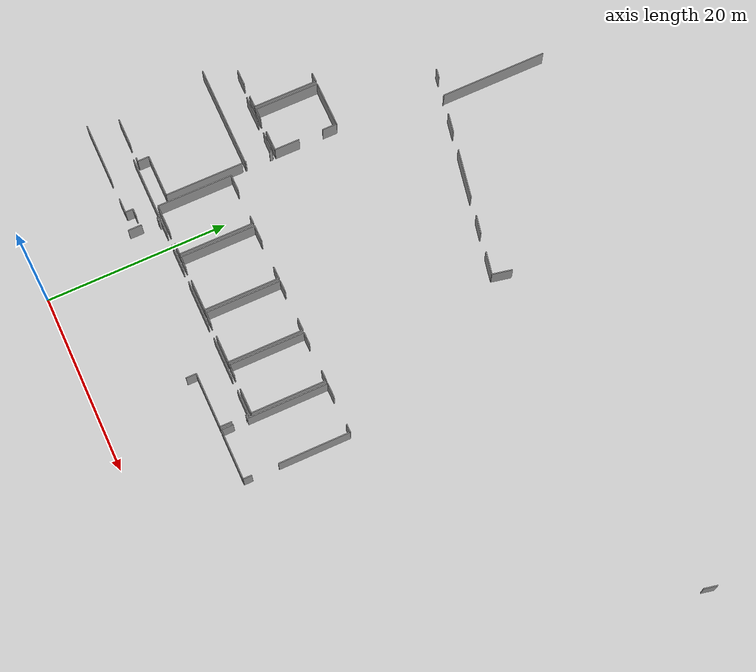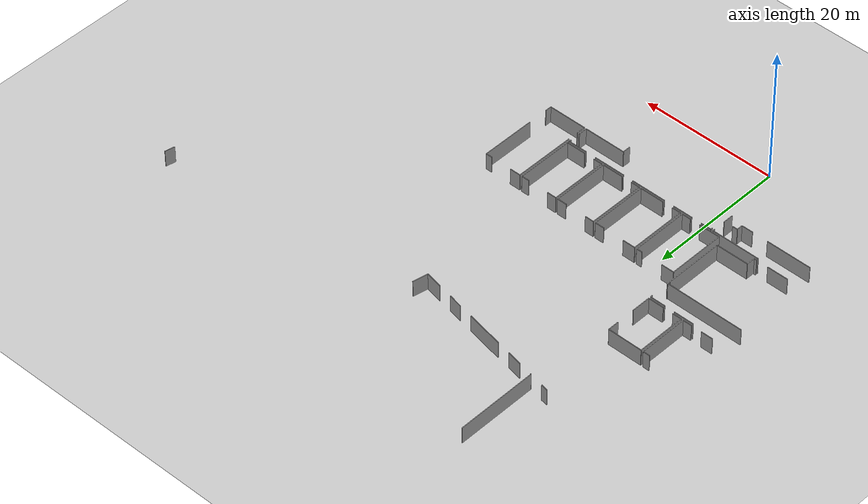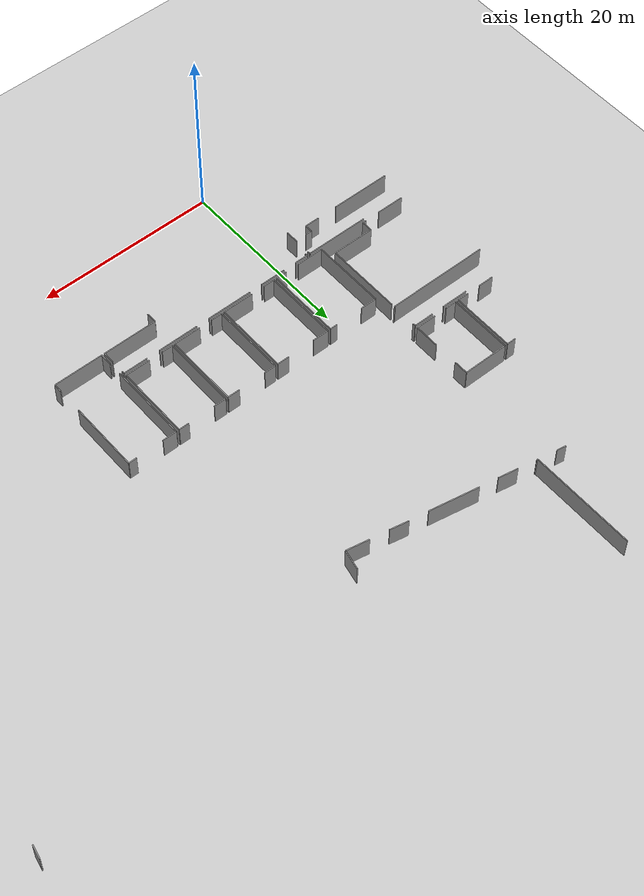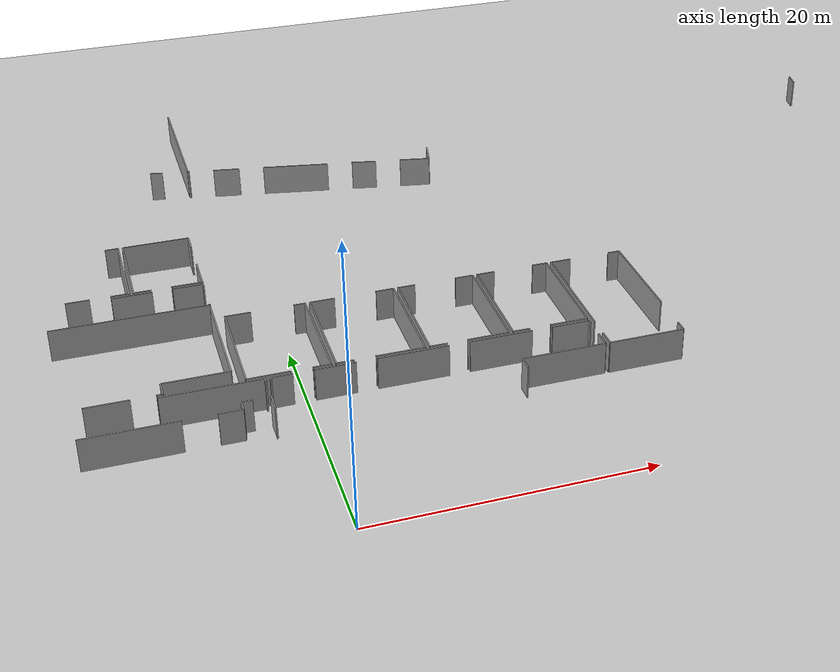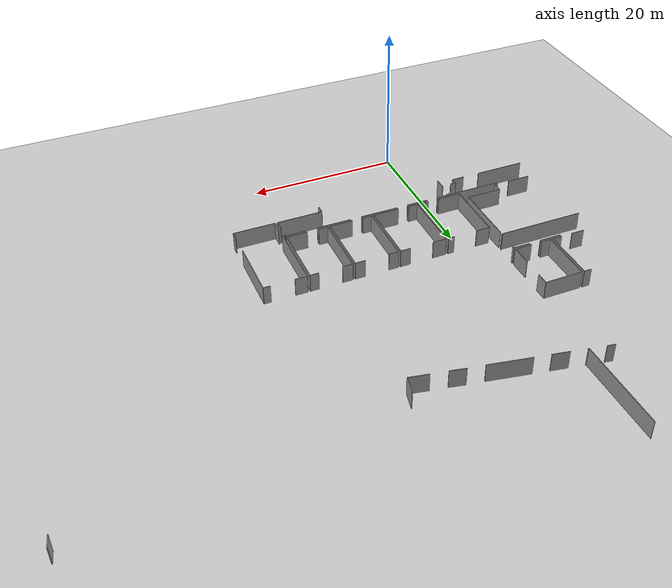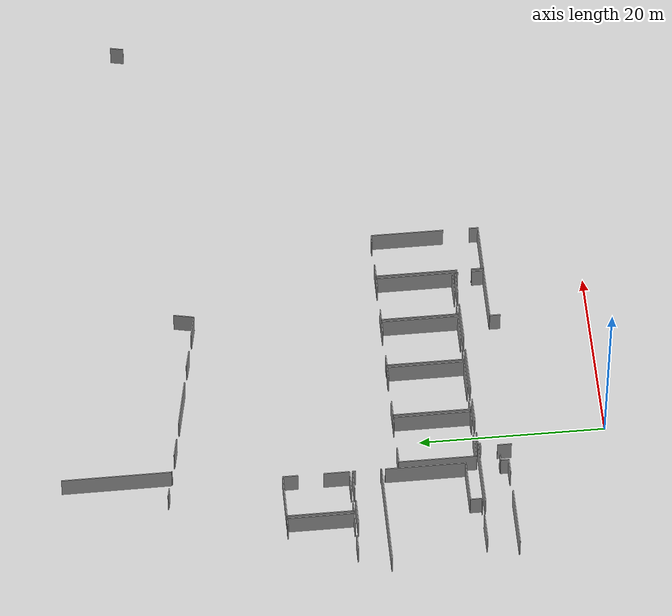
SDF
<sdf version="1.6">
 <world name="default">
  <model name="ground_plane">
   <static>1</static>
   <link name="link">
    <collision name="collision">
     <geometry><plane><normal>0 0 1</normal><size>100 100</size></plane></geometry>
     <surface><friction><ode><mu>100</mu><mu2>50</mu2></ode></friction></surface>
    </collision>
    <visual name="visual">
     <cast_shadows>0</cast_shadows>
     <geometry><plane><normal>0 0 1</normal><size>100 100</size></plane></geometry>
     <material>
      <script><uri>file://media/materials/scripts/gazebo.material</uri><name>Gazebo/Grey</name></script>
     </material>
    </visual>
   </link>
  </model>
  <model name="0510045926_A-40">
   <static>1</static>
   <link name="Wall_524">
    <collision name="Wall_524_Collision">
     <geometry><box><size>1.4505211362 0.1 2.5</size></box></geometry>
     <pose>0.7252605681 0 1.25 0 0 0</pose>
    </collision>
    <visual name="Wall_524_Visual">
     <pose>0.7252605681 0 1.25 0 0 0</pose>
     <geometry><box><size>1.4505211362 0.1 2.5</size></box></geometry>
     <material>
      <script><uri>file://media/materials/scripts/gazebo.material</uri><name>Gazebo/Grey</name></script>
      <ambient>1 1 1 1</ambient>
     </material>
    </visual>
    <pose>189.402689376 -53.2436113032 0 0 0 1.37209662876</pose>
   </link>
   <link name="Wall_536">
    <collision name="Wall_536_Collision">
     <geometry><box><size>11.7244645453 0.1 2.5</size></box></geometry>
     <pose>5.86223227267 0 1.25 0 0 0</pose>
    </collision>
    <visual name="Wall_536_Visual">
     <pose>5.86223227267 0 1.25 0 0 0</pose>
     <geometry><box><size>11.7244645453 0.1 2.5</size></box></geometry>
     <material>
      <script><uri>file://media/materials/scripts/gazebo.material</uri><name>Gazebo/Grey</name></script>
      <ambient>1 1 1 1</ambient>
     </material>
    </visual>
    <pose>130.882163685 -54.281794356 0 0 0 1.57499643633</pose>
   </link>
   <link name="Wall_545">
    <collision name="Wall_545_Collision">
     <geometry><box><size>2.21784998049 0.1 2.5</size></box></geometry>
     <pose>1.10892499024 0 1.25 0 0 0</pose>
    </collision>
    <visual name="Wall_545_Visual">
     <pose>1.10892499024 0 1.25 0 0 0</pose>
     <geometry><box><size>2.21784998049 0.1 2.5</size></box></geometry>
     <material>
      <script><uri>file://media/materials/scripts/gazebo.material</uri><name>Gazebo/Grey</name></script>
      <ambient>1 1 1 1</ambient>
     </material>
    </visual>
    <pose>151.599880698 -56.0657431322 0 0 0 -1.77034666873</pose>
   </link>
   <link name="Wall_546">
    <collision name="Wall_546_Collision">
     <geometry><box><size>2.51424567733 0.1 2.5</size></box></geometry>
     <pose>1.25712283866 0 1.25 0 0 0</pose>
    </collision>
    <visual name="Wall_546_Visual">
     <pose>1.25712283866 0 1.25 0 0 0</pose>
     <geometry><box><size>2.51424567733 0.1 2.5</size></box></geometry>
     <material>
      <script><uri>file://media/materials/scripts/gazebo.material</uri><name>Gazebo/Grey</name></script>
      <ambient>1 1 1 1</ambient>
     </material>
    </visual>
    <pose>151.160239366 -58.2395816808 0 0 0 2.94229633176</pose>
   </link>
   <link name="Wall_547">
    <collision name="Wall_547_Collision">
     <geometry><box><size>2.05072092037 0.1 2.5</size></box></geometry>
     <pose>1.02536046018 0 1.25 0 0 0</pose>
    </collision>
    <visual name="Wall_547_Visual">
     <pose>1.02536046018 0 1.25 0 0 0</pose>
     <geometry><box><size>2.05072092037 0.1 2.5</size></box></geometry>
     <material>
      <script><uri>file://media/materials/scripts/gazebo.material</uri><name>Gazebo/Grey</name></script>
      <ambient>1 1 1 1</ambient>
     </material>
    </visual>
    <pose>146.627770762 -57.3564914997 0 0 0 2.93249632652</pose>
   </link>
   <link name="Wall_548">
    <collision name="Wall_548_Collision">
     <geometry><box><size>5.48751039883 0.1 2.5</size></box></geometry>
     <pose>2.74375519942 0 1.25 0 0 0</pose>
    </collision>
    <visual name="Wall_548_Visual">
     <pose>2.74375519942 0 1.25 0 0 0</pose>
     <geometry><box><size>5.48751039883 0.1 2.5</size></box></geometry>
     <material>
      <script><uri>file://media/materials/scripts/gazebo.material</uri><name>Gazebo/Grey</name></script>
      <ambient>1 1 1 1</ambient>
     </material>
    </visual>
    <pose>142.546873711 -56.5718890997 0 0 0 2.94833379995</pose>
   </link>
   <link name="Wall_549">
    <collision name="Wall_549_Collision">
     <geometry><box><size>2.16450110324 0.1 2.5</size></box></geometry>
     <pose>1.08225055162 0 1.25 0 0 0</pose>
    </collision>
    <visual name="Wall_549_Visual">
     <pose>1.08225055162 0 1.25 0 0 0</pose>
     <geometry><box><size>2.16450110324 0.1 2.5</size></box></geometry>
     <material>
      <script><uri>file://media/materials/scripts/gazebo.material</uri><name>Gazebo/Grey</name></script>
      <ambient>1 1 1 1</ambient>
     </material>
    </visual>
    <pose>135.13693736 -55.1445777781 0 0 0 2.94865888566</pose>
   </link>
   <link name="Wall_550">
    <collision name="Wall_550_Collision">
     <geometry><box><size>0.124872636995 0.1 2.5</size></box></geometry>
     <pose>0.0624363184976 0 1.25 0 0 0</pose>
    </collision>
    <visual name="Wall_550_Visual">
     <pose>0.0624363184976 0 1.25 0 0 0</pose>
     <geometry><box><size>0.124872636995 0.1 2.5</size></box></geometry>
     <material>
      <script><uri>file://media/materials/scripts/gazebo.material</uri><name>Gazebo/Grey</name></script>
      <ambient>1 1 1 1</ambient>
     </material>
    </visual>
    <pose>130.988012666 -54.3480451572 0 0 0 2.58234692593</pose>
   </link>
   <link name="Wall_988">
    <collision name="Wall_988_Collision">
     <geometry><box><size>1.01068223055 0.1 2.5</size></box></geometry>
     <pose>0.505341115277 0 1.25 0 0 0</pose>
    </collision>
    <visual name="Wall_988_Visual">
     <pose>0.505341115277 0 1.25 0 0 0</pose>
     <geometry><box><size>1.01068223055 0.1 2.5</size></box></geometry>
     <material>
      <script><uri>file://media/materials/scripts/gazebo.material</uri><name>Gazebo/Grey</name></script>
      <ambient>1 1 1 1</ambient>
     </material>
    </visual>
    <pose>128.788283 -53.8924122526 0 0 0 2.95158539394</pose>
   </link>
   <link name="Wall_1002">
    <collision name="Wall_1002_Collision">
     <geometry><box><size>1.00391539697 0.1 2.5</size></box></geometry>
     <pose>0.501957698483 0 1.25 0 0 0</pose>
    </collision>
    <visual name="Wall_1002_Visual">
     <pose>0.501957698483 0 1.25 0 0 0</pose>
     <geometry><box><size>1.00391539697 0.1 2.5</size></box></geometry>
     <material>
      <script><uri>file://media/materials/scripts/gazebo.material</uri><name>Gazebo/Grey</name></script>
      <ambient>1 1 1 1</ambient>
     </material>
    </visual>
    <pose>122.773167156 -66.0031094725 0 0 0 0.0</pose>
   </link>
   <link name="Wall_1003">
    <collision name="Wall_1003_Collision">
     <geometry><box><size>7.11244233198 0.1 2.5</size></box></geometry>
     <pose>3.55622116599 0 1.25 0 0 0</pose>
    </collision>
    <visual name="Wall_1003_Visual">
     <pose>3.55622116599 0 1.25 0 0 0</pose>
     <geometry><box><size>7.11244233198 0.1 2.5</size></box></geometry>
     <material>
      <script><uri>file://media/materials/scripts/gazebo.material</uri><name>Gazebo/Grey</name></script>
      <ambient>1 1 1 1</ambient>
     </material>
    </visual>
    <pose>123.777082553 -66.0031094725 0 0 0 -1.57079632679</pose>
   </link>
   <link name="Wall_1004">
    <collision name="Wall_1004_Collision">
     <geometry><box><size>1.3072476092 0.1 2.5</size></box></geometry>
     <pose>0.653623804598 0 1.25 0 0 0</pose>
    </collision>
    <visual name="Wall_1004_Visual">
     <pose>0.653623804598 0 1.25 0 0 0</pose>
     <geometry><box><size>1.3072476092 0.1 2.5</size></box></geometry>
     <material>
      <script><uri>file://media/materials/scripts/gazebo.material</uri><name>Gazebo/Grey</name></script>
      <ambient>1 1 1 1</ambient>
     </material>
    </visual>
    <pose>123.777082553 -73.1155518044 0 0 0 3.14159265359</pose>
   </link>
   <link name="Wall_1005">
    <collision name="Wall_1005_Collision">
     <geometry><box><size>1.73775097368 0.1 2.5</size></box></geometry>
     <pose>0.868875486841 0 1.25 0 0 0</pose>
    </collision>
    <visual name="Wall_1005_Visual">
     <pose>0.868875486841 0 1.25 0 0 0</pose>
     <geometry><box><size>1.73775097368 0.1 2.5</size></box></geometry>
     <material>
      <script><uri>file://media/materials/scripts/gazebo.material</uri><name>Gazebo/Grey</name></script>
      <ambient>1 1 1 1</ambient>
     </material>
    </visual>
    <pose>120.945305014 -73.1155518044 0 0 0 -3.1413005122</pose>
   </link>
   <link name="Wall_1006">
    <collision name="Wall_1006_Collision">
     <geometry><box><size>7.11650368377 0.1 2.5</size></box></geometry>
     <pose>3.55825184189 0 1.25 0 0 0</pose>
    </collision>
    <visual name="Wall_1006_Visual">
     <pose>3.55825184189 0 1.25 0 0 0</pose>
     <geometry><box><size>7.11650368377 0.1 2.5</size></box></geometry>
     <material>
      <script><uri>file://media/materials/scripts/gazebo.material</uri><name>Gazebo/Grey</name></script>
      <ambient>1 1 1 1</ambient>
     </material>
    </visual>
    <pose>124.112651745 -73.1279896943 0 0 0 1.57079632679</pose>
   </link>
   <link name="Wall_1007">
    <collision name="Wall_1007_Collision">
     <geometry><box><size>5.06805937189 0.1 2.5</size></box></geometry>
     <pose>2.53402968594 0 1.25 0 0 0</pose>
    </collision>
    <visual name="Wall_1007_Visual">
     <pose>2.53402968594 0 1.25 0 0 0</pose>
     <geometry><box><size>5.06805937189 0.1 2.5</size></box></geometry>
     <material>
      <script><uri>file://media/materials/scripts/gazebo.material</uri><name>Gazebo/Grey</name></script>
      <ambient>1 1 1 1</ambient>
     </material>
    </visual>
    <pose>124.112651745 -66.0114860105 0 0 0 0.0</pose>
   </link>
   <link name="Wall_1008">
    <collision name="Wall_1008_Collision">
     <geometry><box><size>1.62073320092 0.1 2.5</size></box></geometry>
     <pose>0.810366600458 0 1.25 0 0 0</pose>
    </collision>
    <visual name="Wall_1008_Visual">
     <pose>0.810366600458 0 1.25 0 0 0</pose>
     <geometry><box><size>1.62073320092 0.1 2.5</size></box></geometry>
     <material>
      <script><uri>file://media/materials/scripts/gazebo.material</uri><name>Gazebo/Grey</name></script>
      <ambient>1 1 1 1</ambient>
     </material>
    </visual>
    <pose>129.180711117 -66.0114860105 0 0 0 -1.57079632679</pose>
   </link>
   <link name="Wall_1009">
    <collision name="Wall_1009_Collision">
     <geometry><box><size>2.78862567663 0.1 2.5</size></box></geometry>
     <pose>1.39431283831 0 1.25 0 0 0</pose>
    </collision>
    <visual name="Wall_1009_Visual">
     <pose>1.39431283831 0 1.25 0 0 0</pose>
     <geometry><box><size>2.78862567663 0.1 2.5</size></box></geometry>
     <material>
      <script><uri>file://media/materials/scripts/gazebo.material</uri><name>Gazebo/Grey</name></script>
      <ambient>1 1 1 1</ambient>
     </material>
    </visual>
    <pose>129.180711117 -70.3330181555 0 0 0 -1.57079632679</pose>
   </link>
   <link name="Wall_1010">
    <collision name="Wall_1010_Collision">
     <geometry><box><size>2.27740301936 0.1 2.5</size></box></geometry>
     <pose>1.13870150968 0 1.25 0 0 0</pose>
    </collision>
    <visual name="Wall_1010_Visual">
     <pose>1.13870150968 0 1.25 0 0 0</pose>
     <geometry><box><size>2.27740301936 0.1 2.5</size></box></geometry>
     <material>
      <script><uri>file://media/materials/scripts/gazebo.material</uri><name>Gazebo/Grey</name></script>
      <ambient>1 1 1 1</ambient>
     </material>
    </visual>
    <pose>129.180711117 -73.1216438321 0 0 0 3.14159265359</pose>
   </link>
   <link name="Wall_1011">
    <collision name="Wall_1011_Collision">
     <geometry><box><size>1.28721032714 0.1 2.5</size></box></geometry>
     <pose>0.643605163571 0 1.25 0 0 0</pose>
    </collision>
    <visual name="Wall_1011_Visual">
     <pose>0.643605163571 0 1.25 0 0 0</pose>
     <geometry><box><size>1.28721032714 0.1 2.5</size></box></geometry>
     <material>
      <script><uri>file://media/materials/scripts/gazebo.material</uri><name>Gazebo/Grey</name></script>
      <ambient>1 1 1 1</ambient>
     </material>
    </visual>
    <pose>125.39984643 -73.1216438321 0 0 0 -3.13666269945</pose>
   </link>
   <link name="Wall_1032">
    <collision name="Wall_1032_Collision">
     <geometry><box><size>2.96529447973 0.1 2.5</size></box></geometry>
     <pose>1.48264723987 0 1.25 0 0 0</pose>
    </collision>
    <visual name="Wall_1032_Visual">
     <pose>1.48264723987 0 1.25 0 0 0</pose>
     <geometry><box><size>2.96529447973 0.1 2.5</size></box></geometry>
     <material>
      <script><uri>file://media/materials/scripts/gazebo.material</uri><name>Gazebo/Grey</name></script>
      <ambient>1 1 1 1</ambient>
     </material>
    </visual>
    <pose>122.479988324 -73.4435059619 0 0 0 0.0</pose>
   </link>
   <link name="Wall_1033">
    <collision name="Wall_1033_Collision">
     <geometry><box><size>2.24618137743 0.1 2.5</size></box></geometry>
     <pose>1.12309068872 0 1.25 0 0 0</pose>
    </collision>
    <visual name="Wall_1033_Visual">
     <pose>1.12309068872 0 1.25 0 0 0</pose>
     <geometry><box><size>2.24618137743 0.1 2.5</size></box></geometry>
     <material>
      <script><uri>file://media/materials/scripts/gazebo.material</uri><name>Gazebo/Grey</name></script>
      <ambient>1 1 1 1</ambient>
     </material>
    </visual>
    <pose>126.937829588 -73.4435059619 0 0 0 0.0</pose>
   </link>
   <link name="Wall_1034">
    <collision name="Wall_1034_Collision">
     <geometry><box><size>0.326431150568 0.1 2.5</size></box></geometry>
     <pose>0.163215575284 0 1.25 0 0 0</pose>
    </collision>
    <visual name="Wall_1034_Visual">
     <pose>0.163215575284 0 1.25 0 0 0</pose>
     <geometry><box><size>0.326431150568 0.1 2.5</size></box></geometry>
     <material>
      <script><uri>file://media/materials/scripts/gazebo.material</uri><name>Gazebo/Grey</name></script>
      <ambient>1 1 1 1</ambient>
     </material>
    </visual>
    <pose>129.184010966 -73.4435059619 0 0 0 -1.57079632679</pose>
   </link>
   <link name="Wall_1035">
    <collision name="Wall_1035_Collision">
     <geometry><box><size>0.119302208995 0.1 2.5</size></box></geometry>
     <pose>0.0596511044973 0 1.25 0 0 0</pose>
    </collision>
    <visual name="Wall_1035_Visual">
     <pose>0.0596511044973 0 1.25 0 0 0</pose>
     <geometry><box><size>0.119302208995 0.1 2.5</size></box></geometry>
     <material>
      <script><uri>file://media/materials/scripts/gazebo.material</uri><name>Gazebo/Grey</name></script>
      <ambient>1 1 1 1</ambient>
     </material>
    </visual>
    <pose>129.184010966 -76.4240305109 0 0 0 -1.57079632679</pose>
   </link>
   <link name="Wall_1036">
    <collision name="Wall_1036_Collision">
     <geometry><box><size>11.4707804776 0.1 2.5</size></box></geometry>
     <pose>5.73539023879 0 1.25 0 0 0</pose>
    </collision>
    <visual name="Wall_1036_Visual">
     <pose>5.73539023879 0 1.25 0 0 0</pose>
     <geometry><box><size>11.4707804776 0.1 2.5</size></box></geometry>
     <material>
      <script><uri>file://media/materials/scripts/gazebo.material</uri><name>Gazebo/Grey</name></script>
      <ambient>1 1 1 1</ambient>
     </material>
    </visual>
    <pose>129.184010966 -76.5433327199 0 0 0 3.14159265359</pose>
   </link>
   <link name="Wall_1042">
    <collision name="Wall_1042_Collision">
     <geometry><box><size>8.6159039998 0.1 2.5</size></box></geometry>
     <pose>4.3079519999 0 1.25 0 0 0</pose>
    </collision>
    <visual name="Wall_1042_Visual">
     <pose>4.3079519999 0 1.25 0 0 0</pose>
     <geometry><box><size>8.6159039998 0.1 2.5</size></box></geometry>
     <material>
      <script><uri>file://media/materials/scripts/gazebo.material</uri><name>Gazebo/Grey</name></script>
      <ambient>1 1 1 1</ambient>
     </material>
    </visual>
    <pose>129.17918811 -76.9157079127 0 0 0 -1.57079632679</pose>
   </link>
   <link name="Wall_1043">
    <collision name="Wall_1043_Collision">
     <geometry><box><size>4.74442040068 0.1 2.5</size></box></geometry>
     <pose>2.37221020034 0 1.25 0 0 0</pose>
    </collision>
    <visual name="Wall_1043_Visual">
     <pose>2.37221020034 0 1.25 0 0 0</pose>
     <geometry><box><size>4.74442040068 0.1 2.5</size></box></geometry>
     <material>
      <script><uri>file://media/materials/scripts/gazebo.material</uri><name>Gazebo/Grey</name></script>
      <ambient>1 1 1 1</ambient>
     </material>
    </visual>
    <pose>129.17918811 -85.5316119125 0 0 0 3.14159265359</pose>
   </link>
   <link name="Wall_1044">
    <collision name="Wall_1044_Collision">
     <geometry><box><size>1.25851138765 0.1 2.5</size></box></geometry>
     <pose>0.629255693825 0 1.25 0 0 0</pose>
    </collision>
    <visual name="Wall_1044_Visual">
     <pose>0.629255693825 0 1.25 0 0 0</pose>
     <geometry><box><size>1.25851138765 0.1 2.5</size></box></geometry>
     <material>
      <script><uri>file://media/materials/scripts/gazebo.material</uri><name>Gazebo/Grey</name></script>
      <ambient>1 1 1 1</ambient>
     </material>
    </visual>
    <pose>124.43476771 -85.5316119125 0 0 0 -1.57079632679</pose>
   </link>
   <link name="Wall_1045">
    <collision name="Wall_1045_Collision">
     <geometry><box><size>0.420603745328 0.1 2.5</size></box></geometry>
     <pose>0.210301872664 0 1.25 0 0 0</pose>
    </collision>
    <visual name="Wall_1045_Visual">
     <pose>0.210301872664 0 1.25 0 0 0</pose>
     <geometry><box><size>0.420603745328 0.1 2.5</size></box></geometry>
     <material>
      <script><uri>file://media/materials/scripts/gazebo.material</uri><name>Gazebo/Grey</name></script>
      <ambient>1 1 1 1</ambient>
     </material>
    </visual>
    <pose>124.43476771 -86.7901233001 0 0 0 3.14159265359</pose>
   </link>
   <link name="Wall_1046">
    <collision name="Wall_1046_Collision">
     <geometry><box><size>3.0929734872 0.1 2.5</size></box></geometry>
     <pose>1.5464867436 0 1.25 0 0 0</pose>
    </collision>
    <visual name="Wall_1046_Visual">
     <pose>1.5464867436 0 1.25 0 0 0</pose>
     <geometry><box><size>3.0929734872 0.1 2.5</size></box></geometry>
     <material>
      <script><uri>file://media/materials/scripts/gazebo.material</uri><name>Gazebo/Grey</name></script>
      <ambient>1 1 1 1</ambient>
     </material>
    </visual>
    <pose>122.304081024 -86.7901233001 0 0 0 3.14118231303</pose>
   </link>
   <link name="Wall_1114">
    <collision name="Wall_1114_Collision">
     <geometry><box><size>7.14594848429 0.1 2.5</size></box></geometry>
     <pose>3.57297424215 0 1.25 0 0 0</pose>
    </collision>
    <visual name="Wall_1114_Visual">
     <pose>3.57297424215 0 1.25 0 0 0</pose>
     <geometry><box><size>7.14594848429 0.1 2.5</size></box></geometry>
     <material>
      <script><uri>file://media/materials/scripts/gazebo.material</uri><name>Gazebo/Grey</name></script>
      <ambient>1 1 1 1</ambient>
     </material>
    </visual>
    <pose>124.047162448 -87.1038627263 0 0 0 0.0</pose>
   </link>
   <link name="Wall_1115">
    <collision name="Wall_1115_Collision">
     <geometry><box><size>0.303839881205 0.1 2.5</size></box></geometry>
     <pose>0.151919940603 0 1.25 0 0 0</pose>
    </collision>
    <visual name="Wall_1115_Visual">
     <pose>0.151919940603 0 1.25 0 0 0</pose>
     <geometry><box><size>0.303839881205 0.1 2.5</size></box></geometry>
     <material>
      <script><uri>file://media/materials/scripts/gazebo.material</uri><name>Gazebo/Grey</name></script>
      <ambient>1 1 1 1</ambient>
     </material>
    </visual>
    <pose>131.193110932 -87.1038627263 0 0 0 -1.57079632679</pose>
   </link>
   <link name="Wall_1116">
    <collision name="Wall_1116_Collision">
     <geometry><box><size>1.51996090949 0.1 2.5</size></box></geometry>
     <pose>0.759980454744 0 1.25 0 0 0</pose>
    </collision>
    <visual name="Wall_1116_Visual">
     <pose>0.759980454744 0 1.25 0 0 0</pose>
     <geometry><box><size>1.51996090949 0.1 2.5</size></box></geometry>
     <material>
      <script><uri>file://media/materials/scripts/gazebo.material</uri><name>Gazebo/Grey</name></script>
      <ambient>1 1 1 1</ambient>
     </material>
    </visual>
    <pose>131.193110932 -89.1398691483 0 0 0 -1.57079632679</pose>
   </link>
   <link name="Wall_1119">
    <collision name="Wall_1119_Collision">
     <geometry><box><size>0.751857751153 0.1 2.5</size></box></geometry>
     <pose>0.375928875577 0 1.25 0 0 0</pose>
    </collision>
    <visual name="Wall_1119_Visual">
     <pose>0.375928875577 0 1.25 0 0 0</pose>
     <geometry><box><size>0.751857751153 0.1 2.5</size></box></geometry>
     <material>
      <script><uri>file://media/materials/scripts/gazebo.material</uri><name>Gazebo/Grey</name></script>
      <ambient>1 1 1 1</ambient>
     </material>
    </visual>
    <pose>129.948052772 -89.2843009716 0 0 0 3.14159265359</pose>
   </link>
   <link name="Wall_1120">
    <collision name="Wall_1120_Collision">
     <geometry><box><size>0.863544925531 0.1 2.5</size></box></geometry>
     <pose>0.431772462766 0 1.25 0 0 0</pose>
    </collision>
    <visual name="Wall_1120_Visual">
     <pose>0.431772462766 0 1.25 0 0 0</pose>
     <geometry><box><size>0.863544925531 0.1 2.5</size></box></geometry>
     <material>
      <script><uri>file://media/materials/scripts/gazebo.material</uri><name>Gazebo/Grey</name></script>
      <ambient>1 1 1 1</ambient>
     </material>
    </visual>
    <pose>129.196195021 -89.2843009716 0 0 0 -1.57079632679</pose>
   </link>
   <link name="Wall_1121">
    <collision name="Wall_1121_Collision">
     <geometry><box><size>1.67124626387 0.1 2.5</size></box></geometry>
     <pose>0.835623131937 0 1.25 0 0 0</pose>
    </collision>
    <visual name="Wall_1121_Visual">
     <pose>0.835623131937 0 1.25 0 0 0</pose>
     <geometry><box><size>1.67124626387 0.1 2.5</size></box></geometry>
     <material>
      <script><uri>file://media/materials/scripts/gazebo.material</uri><name>Gazebo/Grey</name></script>
      <ambient>1 1 1 1</ambient>
     </material>
    </visual>
    <pose>129.196195021 -90.1478458971 0 0 0 3.14159265359</pose>
   </link>
   <link name="Wall_1122">
    <collision name="Wall_1122_Collision">
     <geometry><box><size>6.655032586 0.1 2.5</size></box></geometry>
     <pose>3.327516293 0 1.25 0 0 0</pose>
    </collision>
    <visual name="Wall_1122_Visual">
     <pose>3.327516293 0 1.25 0 0 0</pose>
     <geometry><box><size>6.655032586 0.1 2.5</size></box></geometry>
     <material>
      <script><uri>file://media/materials/scripts/gazebo.material</uri><name>Gazebo/Grey</name></script>
      <ambient>1 1 1 1</ambient>
     </material>
    </visual>
    <pose>125.187894633 -90.1478458971 0 0 0 3.14159265359</pose>
   </link>
   <link name="Wall_1223">
    <collision name="Wall_1223_Collision">
     <geometry><box><size>8.32627884988 0.1 2.5</size></box></geometry>
     <pose>4.16313942494 0 1.25 0 0 0</pose>
    </collision>
    <visual name="Wall_1223_Visual">
     <pose>4.16313942494 0 1.25 0 0 0</pose>
     <geometry><box><size>8.32627884988 0.1 2.5</size></box></geometry>
     <material>
      <script><uri>file://media/materials/scripts/gazebo.material</uri><name>Gazebo/Grey</name></script>
      <ambient>1 1 1 1</ambient>
     </material>
    </visual>
    <pose>129.95642931 -86.7883464587 0 0 0 1.57079632679</pose>
   </link>
   <link name="Wall_1224">
    <collision name="Wall_1224_Collision">
     <geometry><box><size>1.85781461198 0.1 2.5</size></box></geometry>
     <pose>0.928907305991 0 1.25 0 0 0</pose>
    </collision>
    <visual name="Wall_1224_Visual">
     <pose>0.928907305991 0 1.25 0 0 0</pose>
     <geometry><box><size>1.85781461198 0.1 2.5</size></box></geometry>
     <material>
      <script><uri>file://media/materials/scripts/gazebo.material</uri><name>Gazebo/Grey</name></script>
      <ambient>1 1 1 1</ambient>
     </material>
    </visual>
    <pose>129.95642931 -78.4620676088 0 0 0 0.0</pose>
   </link>
   <link name="Wall_1225">
    <collision name="Wall_1225_Collision">
     <geometry><box><size>0.83714613886 0.1 2.5</size></box></geometry>
     <pose>0.41857306943 0 1.25 0 0 0</pose>
    </collision>
    <visual name="Wall_1225_Visual">
     <pose>0.41857306943 0 1.25 0 0 0</pose>
     <geometry><box><size>0.83714613886 0.1 2.5</size></box></geometry>
     <material>
      <script><uri>file://media/materials/scripts/gazebo.material</uri><name>Gazebo/Grey</name></script>
      <ambient>1 1 1 1</ambient>
     </material>
    </visual>
    <pose>134.974483288 -78.4620676088 0 0 0 0.0</pose>
   </link>
   <link name="Wall_1226">
    <collision name="Wall_1226_Collision">
     <geometry><box><size>8.31485629795 0.1 2.5</size></box></geometry>
     <pose>4.15742814898 0 1.25 0 0 0</pose>
    </collision>
    <visual name="Wall_1226_Visual">
     <pose>4.15742814898 0 1.25 0 0 0</pose>
     <geometry><box><size>8.31485629795 0.1 2.5</size></box></geometry>
     <material>
      <script><uri>file://media/materials/scripts/gazebo.material</uri><name>Gazebo/Grey</name></script>
      <ambient>1 1 1 1</ambient>
     </material>
    </visual>
    <pose>135.811629427 -78.4620676088 0 0 0 -1.57079632679</pose>
   </link>
   <link name="Wall_1227">
    <collision name="Wall_1227_Collision">
     <geometry><box><size>1.27221844996 0.1 2.5</size></box></geometry>
     <pose>0.63610922498 0 1.25 0 0 0</pose>
    </collision>
    <visual name="Wall_1227_Visual">
     <pose>0.63610922498 0 1.25 0 0 0</pose>
     <geometry><box><size>1.27221844996 0.1 2.5</size></box></geometry>
     <material>
      <script><uri>file://media/materials/scripts/gazebo.material</uri><name>Gazebo/Grey</name></script>
      <ambient>1 1 1 1</ambient>
     </material>
    </visual>
    <pose>135.811629427 -86.7769239068 0 0 0 3.14159265359</pose>
   </link>
   <link name="Wall_1228">
    <collision name="Wall_1228_Collision">
     <geometry><box><size>3.07192620107 0.1 2.5</size></box></geometry>
     <pose>1.53596310053 0 1.25 0 0 0</pose>
    </collision>
    <visual name="Wall_1228_Visual">
     <pose>1.53596310053 0 1.25 0 0 0</pose>
     <geometry><box><size>3.07192620107 0.1 2.5</size></box></geometry>
     <material>
      <script><uri>file://media/materials/scripts/gazebo.material</uri><name>Gazebo/Grey</name></script>
      <ambient>1 1 1 1</ambient>
     </material>
    </visual>
    <pose>133.028334275 -86.7769239068 0 0 0 -3.13787427707</pose>
   </link>
   <link name="Wall_1229">
    <collision name="Wall_1229_Collision">
     <geometry><box><size>8.32500967744 0.1 2.5</size></box></geometry>
     <pose>4.16250483872 0 1.25 0 0 0</pose>
    </collision>
    <visual name="Wall_1229_Visual">
     <pose>4.16250483872 0 1.25 0 0 0</pose>
     <geometry><box><size>8.32500967744 0.1 2.5</size></box></geometry>
     <material>
      <script><uri>file://media/materials/scripts/gazebo.material</uri><name>Gazebo/Grey</name></script>
      <ambient>1 1 1 1</ambient>
     </material>
    </visual>
    <pose>136.148975461 -86.7883464587 0 0 0 1.57079632679</pose>
   </link>
   <link name="Wall_1230">
    <collision name="Wall_1230_Collision">
     <geometry><box><size>1.84207687377 0.1 2.5</size></box></geometry>
     <pose>0.921038436887 0 1.25 0 0 0</pose>
    </collision>
    <visual name="Wall_1230_Visual">
     <pose>0.921038436887 0 1.25 0 0 0</pose>
     <geometry><box><size>1.84207687377 0.1 2.5</size></box></geometry>
     <material>
      <script><uri>file://media/materials/scripts/gazebo.material</uri><name>Gazebo/Grey</name></script>
      <ambient>1 1 1 1</ambient>
     </material>
    </visual>
    <pose>136.148975461 -78.4633367813 0 0 0 0.0</pose>
   </link>
   <link name="Wall_1231">
    <collision name="Wall_1231_Collision">
     <geometry><box><size>1.35268398241 0.1 2.5</size></box></geometry>
     <pose>0.676341991205 0 1.25 0 0 0</pose>
    </collision>
    <visual name="Wall_1231_Visual">
     <pose>0.676341991205 0 1.25 0 0 0</pose>
     <geometry><box><size>1.35268398241 0.1 2.5</size></box></geometry>
     <material>
      <script><uri>file://media/materials/scripts/gazebo.material</uri><name>Gazebo/Grey</name></script>
      <ambient>1 1 1 1</ambient>
     </material>
    </visual>
    <pose>141.119562389 -78.4633367813 0 0 0 0.0</pose>
   </link>
   <link name="Wall_1232">
    <collision name="Wall_1232_Collision">
     <geometry><box><size>8.32602501539 0.1 2.5</size></box></geometry>
     <pose>4.16301250769 0 1.25 0 0 0</pose>
    </collision>
    <visual name="Wall_1232_Visual">
     <pose>4.16301250769 0 1.25 0 0 0</pose>
     <geometry><box><size>8.32602501539 0.1 2.5</size></box></geometry>
     <material>
      <script><uri>file://media/materials/scripts/gazebo.material</uri><name>Gazebo/Grey</name></script>
      <ambient>1 1 1 1</ambient>
     </material>
    </visual>
    <pose>142.472246372 -78.4633367813 0 0 0 -1.57079632679</pose>
   </link>
   <link name="Wall_1233">
    <collision name="Wall_1233_Collision">
     <geometry><box><size>3.52753786893 0.1 2.5</size></box></geometry>
     <pose>1.76376893447 0 1.25 0 0 0</pose>
    </collision>
    <visual name="Wall_1233_Visual">
     <pose>1.76376893447 0 1.25 0 0 0</pose>
     <geometry><box><size>3.52753786893 0.1 2.5</size></box></geometry>
     <material>
      <script><uri>file://media/materials/scripts/gazebo.material</uri><name>Gazebo/Grey</name></script>
      <ambient>1 1 1 1</ambient>
     </material>
    </visual>
    <pose>142.472246372 -86.7893617966 0 0 0 3.14159265359</pose>
   </link>
   <link name="Wall_1234">
    <collision name="Wall_1234_Collision">
     <geometry><box><size>1.267142167 0.1 2.5</size></box></geometry>
     <pose>0.633571083501 0 1.25 0 0 0</pose>
    </collision>
    <visual name="Wall_1234_Visual">
     <pose>0.633571083501 0 1.25 0 0 0</pose>
     <geometry><box><size>1.267142167 0.1 2.5</size></box></geometry>
     <material>
      <script><uri>file://media/materials/scripts/gazebo.material</uri><name>Gazebo/Grey</name></script>
      <ambient>1 1 1 1</ambient>
     </material>
    </visual>
    <pose>137.416117221 -86.7893617966 0 0 0 3.14079137171</pose>
   </link>
   <link name="Wall_1235">
    <collision name="Wall_1235_Collision">
     <geometry><box><size>8.32526351193 0.1 2.5</size></box></geometry>
     <pose>4.16263175596 0 1.25 0 0 0</pose>
    </collision>
    <visual name="Wall_1235_Visual">
     <pose>4.16263175596 0 1.25 0 0 0</pose>
     <geometry><box><size>8.32526351193 0.1 2.5</size></box></geometry>
     <material>
      <script><uri>file://media/materials/scripts/gazebo.material</uri><name>Gazebo/Grey</name></script>
      <ambient>1 1 1 1</ambient>
     </material>
    </visual>
    <pose>142.795885343 -86.7860619483 0 0 0 1.57079632679</pose>
   </link>
   <link name="Wall_1236">
    <collision name="Wall_1236_Collision">
     <geometry><box><size>1.31359347138 0.1 2.5</size></box></geometry>
     <pose>0.656796735689 0 1.25 0 0 0</pose>
    </collision>
    <visual name="Wall_1236_Visual">
     <pose>0.656796735689 0 1.25 0 0 0</pose>
     <geometry><box><size>1.31359347138 0.1 2.5</size></box></geometry>
     <material>
      <script><uri>file://media/materials/scripts/gazebo.material</uri><name>Gazebo/Grey</name></script>
      <ambient>1 1 1 1</ambient>
     </material>
    </visual>
    <pose>142.795885343 -78.4607984364 0 0 0 0.0</pose>
   </link>
   <link name="Wall_1237">
    <collision name="Wall_1237_Collision">
     <geometry><box><size>1.37121389998 0.1 2.5</size></box></geometry>
     <pose>0.685606949988 0 1.25 0 0 0</pose>
    </collision>
    <visual name="Wall_1237_Visual">
     <pose>0.685606949988 0 1.25 0 0 0</pose>
     <geometry><box><size>1.37121389998 0.1 2.5</size></box></geometry>
     <material>
      <script><uri>file://media/materials/scripts/gazebo.material</uri><name>Gazebo/Grey</name></script>
      <ambient>1 1 1 1</ambient>
     </material>
    </visual>
    <pose>147.25499578 -78.4607984364 0 0 0 0.0</pose>
   </link>
   <link name="Wall_1238">
    <collision name="Wall_1238_Collision">
     <geometry><box><size>8.32805569129 0.1 2.5</size></box></geometry>
     <pose>4.16402784564 0 1.25 0 0 0</pose>
    </collision>
    <visual name="Wall_1238_Visual">
     <pose>4.16402784564 0 1.25 0 0 0</pose>
     <geometry><box><size>8.32805569129 0.1 2.5</size></box></geometry>
     <material>
      <script><uri>file://media/materials/scripts/gazebo.material</uri><name>Gazebo/Grey</name></script>
      <ambient>1 1 1 1</ambient>
     </material>
    </visual>
    <pose>148.62620968 -78.4607984364 0 0 0 -1.57079632679</pose>
   </link>
   <link name="Wall_1239">
    <collision name="Wall_1239_Collision">
     <geometry><box><size>3.07647398514 0.1 2.5</size></box></geometry>
     <pose>1.53823699257 0 1.25 0 0 0</pose>
    </collision>
    <visual name="Wall_1239_Visual">
     <pose>1.53823699257 0 1.25 0 0 0</pose>
     <geometry><box><size>3.07647398514 0.1 2.5</size></box></geometry>
     <material>
      <script><uri>file://media/materials/scripts/gazebo.material</uri><name>Gazebo/Grey</name></script>
      <ambient>1 1 1 1</ambient>
     </material>
    </visual>
    <pose>148.62620968 -86.7888541277 0 0 0 3.14159265359</pose>
   </link>
   <link name="Wall_1240">
    <collision name="Wall_1240_Collision">
     <geometry><box><size>1.27729819157 0.1 2.5</size></box></geometry>
     <pose>0.638649095783 0 1.25 0 0 0</pose>
    </collision>
    <visual name="Wall_1240_Visual">
     <pose>0.638649095783 0 1.25 0 0 0</pose>
     <geometry><box><size>1.27729819157 0.1 2.5</size></box></geometry>
     <material>
      <script><uri>file://media/materials/scripts/gazebo.material</uri><name>Gazebo/Grey</name></script>
      <ambient>1 1 1 1</ambient>
     </material>
    </visual>
    <pose>144.073180483 -86.7888541277 0 0 0 3.13940664753</pose>
   </link>
   <link name="Wall_1241">
    <collision name="Wall_1241_Collision">
     <geometry><box><size>8.3059720909 0.1 2.5</size></box></geometry>
     <pose>4.15298604545 0 1.25 0 0 0</pose>
    </collision>
    <visual name="Wall_1241_Visual">
     <pose>4.15298604545 0 1.25 0 0 0</pose>
     <geometry><box><size>8.3059720909 0.1 2.5</size></box></geometry>
     <material>
      <script><uri>file://media/materials/scripts/gazebo.material</uri><name>Gazebo/Grey</name></script>
      <ambient>1 1 1 1</ambient>
     </material>
    </visual>
    <pose>148.933095575 -86.7731163895 0 0 0 1.57079632679</pose>
   </link>
   <link name="Wall_1242">
    <collision name="Wall_1242_Collision">
     <geometry><box><size>1.37730592767 0.1 2.5</size></box></geometry>
     <pose>0.688652963835 0 1.25 0 0 0</pose>
    </collision>
    <visual name="Wall_1242_Visual">
     <pose>0.688652963835 0 1.25 0 0 0</pose>
     <geometry><box><size>1.37730592767 0.1 2.5</size></box></geometry>
     <material>
      <script><uri>file://media/materials/scripts/gazebo.material</uri><name>Gazebo/Grey</name></script>
      <ambient>1 1 1 1</ambient>
     </material>
    </visual>
    <pose>148.933095575 -78.4671442986 0 0 0 0.0</pose>
   </link>
   <link name="Wall_1243">
    <collision name="Wall_1243_Collision">
     <geometry><box><size>1.15291624097 0.1 2.5</size></box></geometry>
     <pose>0.576458120483 0 1.25 0 0 0</pose>
    </collision>
    <visual name="Wall_1243_Visual">
     <pose>0.576458120483 0 1.25 0 0 0</pose>
     <geometry><box><size>1.15291624097 0.1 2.5</size></box></geometry>
     <material>
      <script><uri>file://media/materials/scripts/gazebo.material</uri><name>Gazebo/Grey</name></script>
      <ambient>1 1 1 1</ambient>
     </material>
    </visual>
    <pose>153.380021957 -78.4671442986 0 0 0 0.0</pose>
   </link>
   <link name="Wall_1244">
    <collision name="Wall_1244_Collision">
     <geometry><box><size>8.31561780141 0.1 2.5</size></box></geometry>
     <pose>4.15780890071 0 1.25 0 0 0</pose>
    </collision>
    <visual name="Wall_1244_Visual">
     <pose>4.15780890071 0 1.25 0 0 0</pose>
     <geometry><box><size>8.31561780141 0.1 2.5</size></box></geometry>
     <material>
      <script><uri>file://media/materials/scripts/gazebo.material</uri><name>Gazebo/Grey</name></script>
      <ambient>1 1 1 1</ambient>
     </material>
    </visual>
    <pose>154.532938198 -78.4671442986 0 0 0 -1.57079632679</pose>
   </link>
   <link name="Wall_1245">
    <collision name="Wall_1245_Collision">
     <geometry><box><size>2.79624071124 0.1 2.5</size></box></geometry>
     <pose>1.39812035562 0 1.25 0 0 0</pose>
    </collision>
    <visual name="Wall_1245_Visual">
     <pose>1.39812035562 0 1.25 0 0 0</pose>
     <geometry><box><size>2.79624071124 0.1 2.5</size></box></geometry>
     <material>
      <script><uri>file://media/materials/scripts/gazebo.material</uri><name>Gazebo/Grey</name></script>
      <ambient>1 1 1 1</ambient>
     </material>
    </visual>
    <pose>154.532938198 -86.7827621 0 0 0 3.14159265359</pose>
   </link>
   <link name="Wall_1246">
    <collision name="Wall_1246_Collision">
     <geometry><box><size>1.23798837174 0.1 2.5</size></box></geometry>
     <pose>0.618994185868 0 1.25 0 0 0</pose>
    </collision>
    <visual name="Wall_1246_Visual">
     <pose>0.618994185868 0 1.25 0 0 0</pose>
     <geometry><box><size>1.23798837174 0.1 2.5</size></box></geometry>
     <material>
      <script><uri>file://media/materials/scripts/gazebo.material</uri><name>Gazebo/Grey</name></script>
      <ambient>1 1 1 1</ambient>
     </material>
    </visual>
    <pose>150.171046369 -86.7827621 0 0 0 3.13380113605</pose>
   </link>
   <link name="Wall_1247">
    <collision name="Wall_1247_Collision">
     <geometry><box><size>1.3270466992 0.1 2.5</size></box></geometry>
     <pose>0.6635233496 0 1.25 0 0 0</pose>
    </collision>
    <visual name="Wall_1247_Visual">
     <pose>0.6635233496 0 1.25 0 0 0</pose>
     <geometry><box><size>1.3270466992 0.1 2.5</size></box></geometry>
     <material>
      <script><uri>file://media/materials/scripts/gazebo.material</uri><name>Gazebo/Grey</name></script>
      <ambient>1 1 1 1</ambient>
     </material>
    </visual>
    <pose>154.877645431 -90.2336419538 0 0 0 1.57079632679</pose>
   </link>
   <link name="Wall_1248">
    <collision name="Wall_1248_Collision">
     <geometry><box><size>8.89461426677 0.1 2.5</size></box></geometry>
     <pose>4.44730713338 0 1.25 0 0 0</pose>
    </collision>
    <visual name="Wall_1248_Visual">
     <pose>4.44730713338 0 1.25 0 0 0</pose>
     <geometry><box><size>8.89461426677 0.1 2.5</size></box></geometry>
     <material>
      <script><uri>file://media/materials/scripts/gazebo.material</uri><name>Gazebo/Grey</name></script>
      <ambient>1 1 1 1</ambient>
     </material>
    </visual>
    <pose>154.877645431 -87.3665814206 0 0 0 1.57079632679</pose>
   </link>
   <link name="Wall_1249">
    <collision name="Wall_1249_Collision">
     <geometry><box><size>1.59103456591 0.1 2.5</size></box></geometry>
     <pose>0.795517282956 0 1.25 0 0 0</pose>
    </collision>
    <visual name="Wall_1249_Visual">
     <pose>0.795517282956 0 1.25 0 0 0</pose>
     <geometry><box><size>1.59103456591 0.1 2.5</size></box></geometry>
     <material>
      <script><uri>file://media/materials/scripts/gazebo.material</uri><name>Gazebo/Grey</name></script>
      <ambient>1 1 1 1</ambient>
     </material>
    </visual>
    <pose>154.877645431 -78.4719671538 0 0 0 0.0</pose>
   </link>
   <link name="Wall_1250">
    <collision name="Wall_1250_Collision">
     <geometry><box><size>0.911265809129 0.1 2.5</size></box></geometry>
     <pose>0.455632904565 0 1.25 0 0 0</pose>
    </collision>
    <visual name="Wall_1250_Visual">
     <pose>0.455632904565 0 1.25 0 0 0</pose>
     <geometry><box><size>0.911265809129 0.1 2.5</size></box></geometry>
     <material>
      <script><uri>file://media/materials/scripts/gazebo.material</uri><name>Gazebo/Grey</name></script>
      <ambient>1 1 1 1</ambient>
     </material>
    </visual>
    <pose>159.571552769 -78.4719671538 0 0 0 0.0</pose>
   </link>
   <link name="Wall_1251">
    <collision name="Wall_1251_Collision">
     <geometry><box><size>7.91912833237 0.1 2.5</size></box></geometry>
     <pose>3.95956416619 0 1.25 0 0 0</pose>
    </collision>
    <visual name="Wall_1251_Visual">
     <pose>3.95956416619 0 1.25 0 0 0</pose>
     <geometry><box><size>7.91912833237 0.1 2.5</size></box></geometry>
     <material>
      <script><uri>file://media/materials/scripts/gazebo.material</uri><name>Gazebo/Grey</name></script>
      <ambient>1 1 1 1</ambient>
     </material>
    </visual>
    <pose>160.482818578 -78.4719671538 0 0 0 -1.57079632679</pose>
   </link>
   <link name="Wall_1252">
    <collision name="Wall_1252_Collision">
     <geometry><box><size>0.958479023753 0.1 2.5</size></box></geometry>
     <pose>0.479239511876 0 1.25 0 0 0</pose>
    </collision>
    <visual name="Wall_1252_Visual">
     <pose>0.479239511876 0 1.25 0 0 0</pose>
     <geometry><box><size>0.958479023753 0.1 2.5</size></box></geometry>
     <material>
      <script><uri>file://media/materials/scripts/gazebo.material</uri><name>Gazebo/Grey</name></script>
      <ambient>1 1 1 1</ambient>
     </material>
    </visual>
    <pose>160.482818578 -89.2822702957 0 0 0 -1.57079632679</pose>
   </link>
   <link name="Wall_1253">
    <collision name="Wall_1253_Collision">
     <geometry><box><size>5.60517765292 0.1 2.5</size></box></geometry>
     <pose>2.80258882646 0 1.25 0 0 0</pose>
    </collision>
    <visual name="Wall_1253_Visual">
     <pose>2.80258882646 0 1.25 0 0 0</pose>
     <geometry><box><size>5.60517765292 0.1 2.5</size></box></geometry>
     <material>
      <script><uri>file://media/materials/scripts/gazebo.material</uri><name>Gazebo/Grey</name></script>
      <ambient>1 1 1 1</ambient>
     </material>
    </visual>
    <pose>160.482818578 -90.2407493194 0 0 0 3.14032465318</pose>
   </link>
   <link name="Wall_1254">
    <collision name="Wall_1254_Collision">
     <geometry><box><size>1.53036812347 0.1 2.5</size></box></geometry>
     <pose>0.765184061733 0 1.25 0 0 0</pose>
    </collision>
    <visual name="Wall_1254_Visual">
     <pose>0.765184061733 0 1.25 0 0 0</pose>
     <geometry><box><size>1.53036812347 0.1 2.5</size></box></geometry>
     <material>
      <script><uri>file://media/materials/scripts/gazebo.material</uri><name>Gazebo/Grey</name></script>
      <ambient>1 1 1 1</ambient>
     </material>
    </visual>
    <pose>131.547463876 -87.1038627263 0 0 0 0.0</pose>
   </link>
   <link name="Wall_1255">
    <collision name="Wall_1255_Collision">
     <geometry><box><size>2.9084355546 0.1 2.5</size></box></geometry>
     <pose>1.4542177773 0 1.25 0 0 0</pose>
    </collision>
    <visual name="Wall_1255_Visual">
     <pose>1.4542177773 0 1.25 0 0 0</pose>
     <geometry><box><size>2.9084355546 0.1 2.5</size></box></geometry>
     <material>
      <script><uri>file://media/materials/scripts/gazebo.material</uri><name>Gazebo/Grey</name></script>
      <ambient>1 1 1 1</ambient>
     </material>
    </visual>
    <pose>134.571394122 -87.1038627263 0 0 0 0.0</pose>
   </link>
   <link name="Wall_1256">
    <collision name="Wall_1256_Collision">
     <geometry><box><size>5.15588610447 0.1 2.5</size></box></geometry>
     <pose>2.57794305223 0 1.25 0 0 0</pose>
    </collision>
    <visual name="Wall_1256_Visual">
     <pose>2.57794305223 0 1.25 0 0 0</pose>
     <geometry><box><size>5.15588610447 0.1 2.5</size></box></geometry>
     <material>
      <script><uri>file://media/materials/scripts/gazebo.material</uri><name>Gazebo/Grey</name></script>
      <ambient>1 1 1 1</ambient>
     </material>
    </visual>
    <pose>138.969838117 -87.1038627263 0 0 0 0.0</pose>
   </link>
   <link name="Wall_1257">
    <collision name="Wall_1257_Collision">
     <geometry><box><size>4.62359518476 0.1 2.5</size></box></geometry>
     <pose>2.31179759238 0 1.25 0 0 0</pose>
    </collision>
    <visual name="Wall_1257_Visual">
     <pose>2.31179759238 0 1.25 0 0 0</pose>
     <geometry><box><size>4.62359518476 0.1 2.5</size></box></geometry>
     <material>
      <script><uri>file://media/materials/scripts/gazebo.material</uri><name>Gazebo/Grey</name></script>
      <ambient>1 1 1 1</ambient>
     </material>
    </visual>
    <pose>145.63375491 -87.1038627263 0 0 0 0.0</pose>
   </link>
   <link name="Wall_1258">
    <collision name="Wall_1258_Collision">
     <geometry><box><size>2.78532582829 0.1 2.5</size></box></geometry>
     <pose>1.39266291415 0 1.25 0 0 0</pose>
    </collision>
    <visual name="Wall_1258_Visual">
     <pose>1.39266291415 0 1.25 0 0 0</pose>
     <geometry><box><size>2.78532582829 0.1 2.5</size></box></geometry>
     <material>
      <script><uri>file://media/materials/scripts/gazebo.material</uri><name>Gazebo/Grey</name></script>
      <ambient>1 1 1 1</ambient>
     </material>
    </visual>
    <pose>151.769442135 -87.1038627263 0 0 0 0.0</pose>
   </link>
   <link name="Wall_1259">
    <collision name="Wall_1259_Collision">
     <geometry><box><size>0.309931908899 0.1 2.5</size></box></geometry>
     <pose>0.154965954449 0 1.25 0 0 0</pose>
    </collision>
    <visual name="Wall_1259_Visual">
     <pose>0.154965954449 0 1.25 0 0 0</pose>
     <geometry><box><size>0.309931908899 0.1 2.5</size></box></geometry>
     <material>
      <script><uri>file://media/materials/scripts/gazebo.material</uri><name>Gazebo/Grey</name></script>
      <ambient>1 1 1 1</ambient>
     </material>
    </visual>
    <pose>154.554767964 -87.1038627263 0 0 0 -1.57079632679</pose>
   </link>
   <link name="Wall_1260">
    <collision name="Wall_1260_Collision">
     <geometry><box><size>1.29277904342 0.1 2.5</size></box></geometry>
     <pose>0.646389521712 0 1.25 0 0 0</pose>
    </collision>
    <visual name="Wall_1260_Visual">
     <pose>0.646389521712 0 1.25 0 0 0</pose>
     <geometry><box><size>1.29277904342 0.1 2.5</size></box></geometry>
     <material>
      <script><uri>file://media/materials/scripts/gazebo.material</uri><name>Gazebo/Grey</name></script>
      <ambient>1 1 1 1</ambient>
     </material>
    </visual>
    <pose>154.554767964 -88.9335017102 0 0 0 -1.57079632679</pose>
   </link>
   <link name="Wall_1261">
    <collision name="Wall_1261_Collision">
     <geometry><box><size>6.14406376322 0.1 2.5</size></box></geometry>
     <pose>3.07203188161 0 1.25 0 0 0</pose>
    </collision>
    <visual name="Wall_1261_Visual">
     <pose>3.07203188161 0 1.25 0 0 0</pose>
     <geometry><box><size>6.14406376322 0.1 2.5</size></box></geometry>
     <material>
      <script><uri>file://media/materials/scripts/gazebo.material</uri><name>Gazebo/Grey</name></script>
      <ambient>1 1 1 1</ambient>
     </material>
    </visual>
    <pose>154.554767964 -90.2262807536 0 0 0 3.14159265359</pose>
   </link>
   <link name="Wall_1262">
    <collision name="Wall_1262_Collision">
     <geometry><box><size>1.14809338571 0.1 2.5</size></box></geometry>
     <pose>0.574046692854 0 1.25 0 0 0</pose>
    </collision>
    <visual name="Wall_1262_Visual">
     <pose>0.574046692854 0 1.25 0 0 0</pose>
     <geometry><box><size>1.14809338571 0.1 2.5</size></box></geometry>
     <material>
      <script><uri>file://media/materials/scripts/gazebo.material</uri><name>Gazebo/Grey</name></script>
      <ambient>1 1 1 1</ambient>
     </material>
    </visual>
    <pose>148.4107042 -90.2262807536 0 0 0 -1.57079632679</pose>
   </link>
   <link name="Wall_1275">
    <collision name="Wall_1275_Collision">
     <geometry><box><size>0.268310737561 0.1 2.5</size></box></geometry>
     <pose>0.134155368781 0 1.25 0 0 0</pose>
    </collision>
    <visual name="Wall_1275_Visual">
     <pose>0.134155368781 0 1.25 0 0 0</pose>
     <geometry><box><size>0.268310737561 0.1 2.5</size></box></geometry>
     <material>
      <script><uri>file://media/materials/scripts/gazebo.material</uri><name>Gazebo/Grey</name></script>
      <ambient>1 1 1 1</ambient>
     </material>
    </visual>
    <pose>131.549494552 -87.3721657793 0 0 0 1.57836477263</pose>
   </link>
   <pose>-133.95 101.113233661 0 0 0 0</pose>
  </model>
 </world>
</sdf>
